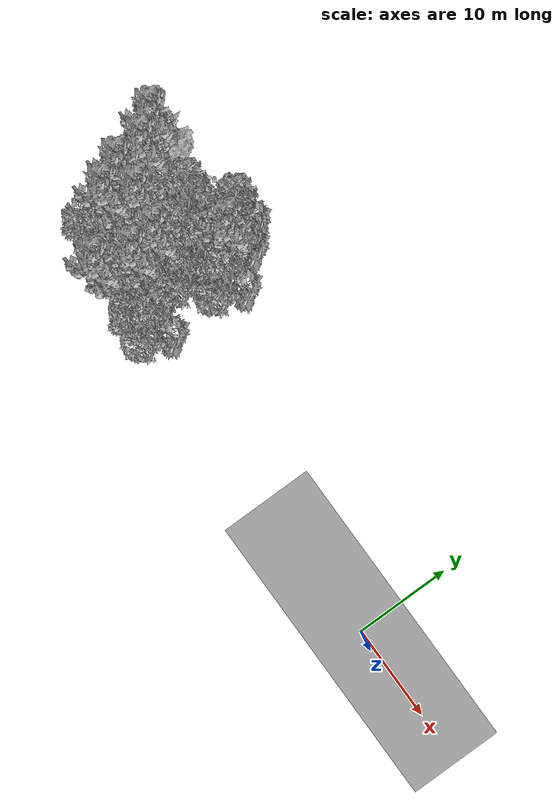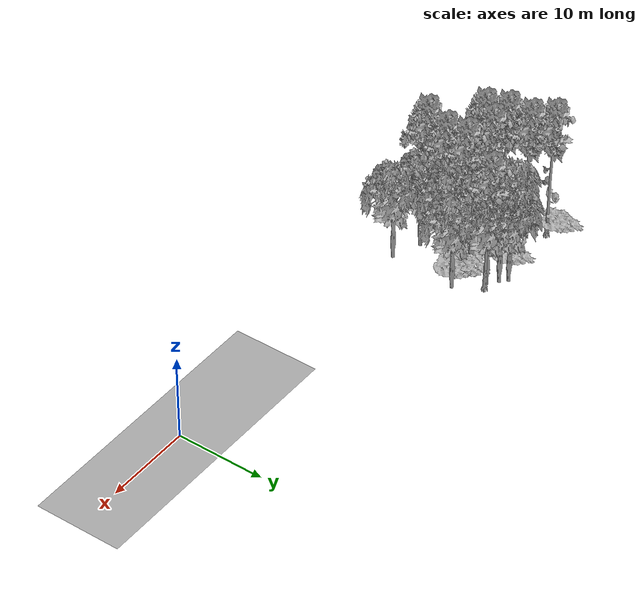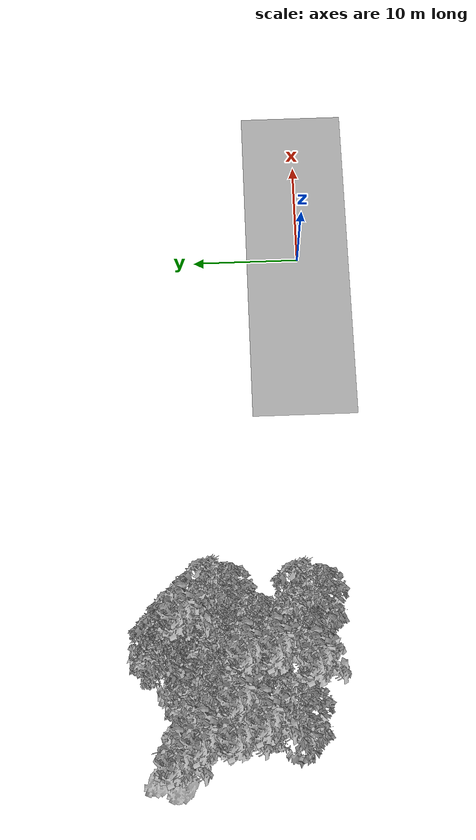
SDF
<sdf version="1.7">
 <world name="default">
  <model name="ground_plane">
   <static>1</static>
   <link name="link">
    <collision name="collision">
     <pose>-50 0 0 0 -0 0</pose>
     <geometry><plane><normal>0 0 1</normal><size>100 100</size></plane></geometry>
     <surface><contact><ode><min_depth>0.01</min_depth><max_vel>0</max_vel></ode></contact></surface>
    </collision>
    <visual name="grass">
     <cast_shadows>0</cast_shadows>
     <geometry>
      <mesh>
       <scale>0.5814285714285714 0.18142857142857144 0.1</scale>
       <uri>file://grass_plane/meshes/grass_plane.dae</uri>
      </mesh>
     </geometry>
    </visual>
   </link>
  </model>
  <model name="Tree 4">
   <static>1</static>
   <pose>-37.860258658787785 12.171442910924156 0 1.57079 -0 0</pose>
   <link name="link">
    <collision name="collision">
     <geometry><mesh><scale>3.5 5 3.5</scale><uri>model://tree_2/meshes/tree_2.obj</uri></mesh></geometry>
    </collision>
    <visual name="visual">
     <geometry><mesh><scale>3.5 5 3.5</scale><uri>model://tree_2/meshes/tree_2.obj</uri></mesh></geometry>
    </visual>
   </link>
  </model>
  <model name="Tree 14">
   <static>1</static>
   <pose>-44.75034069485515 4.949931277231471 0 1.57079 -0 0</pose>
   <link name="link">
    <collision name="collision">
     <geometry><mesh><scale>3.5 5 3.5</scale><uri>model://tree_9/meshes/tree_9.obj</uri></mesh></geometry>
    </collision>
    <visual name="visual">
     <geometry><mesh><scale>3.5 5 3.5</scale><uri>model://tree_9/meshes/tree_9.obj</uri></mesh></geometry>
    </visual>
   </link>
  </model>
  <model name="Tree 15">
   <static>1</static>
   <pose>-37.89983773162189 2.2039727767756325 0 1.57079 -0 0</pose>
   <link name="link">
    <collision name="collision">
     <geometry><mesh><scale>3.5 5 3.5</scale><uri>model://tree_2/meshes/tree_2.obj</uri></mesh></geometry>
    </collision>
    <visual name="visual">
     <geometry><mesh><scale>3.5 5 3.5</scale><uri>model://tree_2/meshes/tree_2.obj</uri></mesh></geometry>
    </visual>
   </link>
  </model>
  <model name="Tree 16">
   <static>1</static>
   <pose>-41.636838350007686 7.191071305497637 0 1.57079 -0 0</pose>
   <link name="link">
    <collision name="collision">
     <geometry><mesh><scale>4 2.5 4</scale><uri>model://tree_1/meshes/tree_1.obj</uri></mesh></geometry>
    </collision>
    <visual name="visual">
     <geometry><mesh><scale>4 2.5 4</scale><uri>model://tree_1/meshes/tree_1.obj</uri></mesh></geometry>
    </visual>
   </link>
  </model>
  <model name="Tree 45">
   <static>1</static>
   <pose>-45.793317973348465 7.11568474986823 0 1.57079 -0 0</pose>
   <link name="link">
    <collision name="collision">
     <geometry><mesh><scale>3.5 5 3.5</scale><uri>model://tree_9/meshes/tree_9.obj</uri></mesh></geometry>
    </collision>
    <visual name="visual">
     <geometry><mesh><scale>3.5 5 3.5</scale><uri>model://tree_9/meshes/tree_9.obj</uri></mesh></geometry>
    </visual>
   </link>
  </model>
  <model name="Tree 54">
   <static>1</static>
   <pose>-40.341334356723706 0.8218448333657946 0 1.57079 -0 0</pose>
   <link name="link">
    <collision name="collision">
     <geometry><mesh><scale>3.5 5 3.5</scale><uri>model://tree_9/meshes/tree_9.obj</uri></mesh></geometry>
    </collision>
    <visual name="visual">
     <geometry><mesh><scale>3.5 5 3.5</scale><uri>model://tree_9/meshes/tree_9.obj</uri></mesh></geometry>
    </visual>
   </link>
  </model>
  <model name="Tree 60">
   <static>1</static>
   <pose>-40.44781382082306 7.845623440817647 0 1.57079 -0 0</pose>
   <link name="link">
    <collision name="collision">
     <geometry><mesh><scale>3 2 3</scale><uri>model://tree_3/meshes/tree_3.obj</uri></mesh></geometry>
    </collision>
    <visual name="visual">
     <geometry><mesh><scale>3 2 3</scale><uri>model://tree_3/meshes/tree_3.obj</uri></mesh></geometry>
    </visual>
   </link>
  </model>
  <model name="Tree 80">
   <static>1</static>
   <pose>-41.1367477736361 11.532578595082306 0 1.57079 -0 0</pose>
   <link name="link">
    <collision name="collision">
     <geometry><mesh><scale>4 2.5 4</scale><uri>model://tree_1/meshes/tree_1.obj</uri></mesh></geometry>
    </collision>
    <visual name="visual">
     <geometry><mesh><scale>4 2.5 4</scale><uri>model://tree_1/meshes/tree_1.obj</uri></mesh></geometry>
    </visual>
   </link>
  </model>
  <model name="Tree 98">
   <static>1</static>
   <pose>-47.51415072182769 11.718019205872942 0 1.57079 -0 0</pose>
   <link name="link">
    <collision name="collision">
     <geometry><mesh><scale>3.5 5 3.5</scale><uri>model://tree_9/meshes/tree_9.obj</uri></mesh></geometry>
    </collision>
    <visual name="visual">
     <geometry><mesh><scale>3.5 5 3.5</scale><uri>model://tree_9/meshes/tree_9.obj</uri></mesh></geometry>
    </visual>
   </link>
  </model>
  <model name="Tree 107">
   <static>1</static>
   <pose>-34.65278559874103 1.0095065330319137 0 1.57079 -0 0</pose>
   <link name="link">
    <collision name="collision">
     <geometry><mesh><scale>3.5 5 3.5</scale><uri>model://tree_2/meshes/tree_2.obj</uri></mesh></geometry>
    </collision>
    <visual name="visual">
     <geometry><mesh><scale>3.5 5 3.5</scale><uri>model://tree_2/meshes/tree_2.obj</uri></mesh></geometry>
    </visual>
   </link>
  </model>
  <model name="Tree 125">
   <static>1</static>
   <pose>-39.55416533805814 6.17032811723622 0 1.57079 -0 0</pose>
   <link name="link">
    <collision name="collision">
     <geometry><mesh><scale>3.5 5 3.5</scale><uri>model://tree_9/meshes/tree_9.obj</uri></mesh></geometry>
    </collision>
    <visual name="visual">
     <geometry><mesh><scale>3.5 5 3.5</scale><uri>model://tree_9/meshes/tree_9.obj</uri></mesh></geometry>
    </visual>
   </link>
  </model>
  <model name="Tree 138">
   <static>1</static>
   <pose>-36.85792273941813 6.355683295993096 0 1.57079 -0 0</pose>
   <link name="link">
    <collision name="collision">
     <geometry><mesh><scale>3.5 5 3.5</scale><uri>model://tree_2/meshes/tree_2.obj</uri></mesh></geometry>
    </collision>
    <visual name="visual">
     <geometry><mesh><scale>3.5 5 3.5</scale><uri>model://tree_2/meshes/tree_2.obj</uri></mesh></geometry>
    </visual>
   </link>
  </model>
  <model name="Tree 166">
   <static>1</static>
   <pose>-42.2509929964215 10.118006093158058 0 1.57079 -0 0</pose>
   <link name="link">
    <collision name="collision">
     <geometry><mesh><scale>3.5 5 3.5</scale><uri>model://tree_2/meshes/tree_2.obj</uri></mesh></geometry>
    </collision>
    <visual name="visual">
     <geometry><mesh><scale>3.5 5 3.5</scale><uri>model://tree_2/meshes/tree_2.obj</uri></mesh></geometry>
    </visual>
   </link>
  </model>
  <model name="Tree 167">
   <static>1</static>
   <pose>-36.93524289442046 8.85020052528959 0 1.57079 -0 0</pose>
   <link name="link">
    <collision name="collision">
     <geometry><mesh><scale>4 2.5 4</scale><uri>model://tree_1/meshes/tree_1.obj</uri></mesh></geometry>
    </collision>
    <visual name="visual">
     <geometry><mesh><scale>4 2.5 4</scale><uri>model://tree_1/meshes/tree_1.obj</uri></mesh></geometry>
    </visual>
   </link>
  </model>
  <model name="Tree 169">
   <static>1</static>
   <pose>-43.9809800008766 2.669078225928647 0 1.57079 -0 0</pose>
   <link name="link">
    <collision name="collision">
     <geometry><mesh><scale>3.5 5 3.5</scale><uri>model://tree_2/meshes/tree_2.obj</uri></mesh></geometry>
    </collision>
    <visual name="visual">
     <geometry><mesh><scale>3.5 5 3.5</scale><uri>model://tree_2/meshes/tree_2.obj</uri></mesh></geometry>
    </visual>
   </link>
  </model>
  <model name="Tree 190">
   <static>1</static>
   <pose>-36.7042951765539 11.363687608277896 0 1.57079 -0 0</pose>
   <link name="link">
    <collision name="collision">
     <geometry><mesh><scale>3.5 5 3.5</scale><uri>model://tree_2/meshes/tree_2.obj</uri></mesh></geometry>
    </collision>
    <visual name="visual">
     <geometry><mesh><scale>3.5 5 3.5</scale><uri>model://tree_2/meshes/tree_2.obj</uri></mesh></geometry>
    </visual>
   </link>
  </model>
  <model name="Tree 227">
   <static>1</static>
   <pose>-38.38337782689125 5.695789502562771 0 1.57079 -0 0</pose>
   <link name="link">
    <collision name="collision">
     <geometry><mesh><scale>3.5 5 3.5</scale><uri>model://tree_2/meshes/tree_2.obj</uri></mesh></geometry>
    </collision>
    <visual name="visual">
     <geometry><mesh><scale>3.5 5 3.5</scale><uri>model://tree_2/meshes/tree_2.obj</uri></mesh></geometry>
    </visual>
   </link>
  </model>
  <model name="Tree 229">
   <static>1</static>
   <pose>-39.2517511687585 3.862285721301916 0 1.57079 -0 0</pose>
   <link name="link">
    <collision name="collision">
     <geometry><mesh><scale>3.5 5 3.5</scale><uri>model://tree_9/meshes/tree_9.obj</uri></mesh></geometry>
    </collision>
    <visual name="visual">
     <geometry><mesh><scale>3.5 5 3.5</scale><uri>model://tree_9/meshes/tree_9.obj</uri></mesh></geometry>
    </visual>
   </link>
  </model>
  <model name="Tree 231">
   <static>1</static>
   <pose>-43.05425089377534 6.97390566915961 0 1.57079 -0 0</pose>
   <link name="link">
    <collision name="collision">
     <geometry><mesh><scale>3.5 5 3.5</scale><uri>model://tree_9/meshes/tree_9.obj</uri></mesh></geometry>
    </collision>
    <visual name="visual">
     <geometry><mesh><scale>3.5 5 3.5</scale><uri>model://tree_9/meshes/tree_9.obj</uri></mesh></geometry>
    </visual>
   </link>
  </model>
  <model name="Tree 233">
   <static>1</static>
   <pose>-35.838930981613125 7.957839869333689 0 1.57079 -0 0</pose>
   <link name="link">
    <collision name="collision">
     <geometry><mesh><scale>4 2.5 4</scale><uri>model://tree_1/meshes/tree_1.obj</uri></mesh></geometry>
    </collision>
    <visual name="visual">
     <geometry><mesh><scale>4 2.5 4</scale><uri>model://tree_1/meshes/tree_1.obj</uri></mesh></geometry>
    </visual>
   </link>
  </model>
  <model name="Tree 242">
   <static>1</static>
   <pose>-34.21616725023119 8.73267068570576 0 1.57079 -0 0</pose>
   <link name="link">
    <collision name="collision">
     <geometry><mesh><scale>3.5 5 3.5</scale><uri>model://tree_2/meshes/tree_2.obj</uri></mesh></geometry>
    </collision>
    <visual name="visual">
     <geometry><mesh><scale>3.5 5 3.5</scale><uri>model://tree_2/meshes/tree_2.obj</uri></mesh></geometry>
    </visual>
   </link>
  </model>
  <model name="Tree 246">
   <static>1</static>
   <pose>-37.82587838969256 8.64210754967748 0 1.57079 -0 0</pose>
   <link name="link">
    <collision name="collision">
     <geometry><mesh><scale>3.5 5 3.5</scale><uri>model://tree_2/meshes/tree_2.obj</uri></mesh></geometry>
    </collision>
    <visual name="visual">
     <geometry><mesh><scale>3.5 5 3.5</scale><uri>model://tree_2/meshes/tree_2.obj</uri></mesh></geometry>
    </visual>
   </link>
  </model>
  <model name="Tree 270">
   <static>1</static>
   <pose>-36.41639005397395 11.339259713437553 0 1.57079 -0 0</pose>
   <link name="link">
    <collision name="collision">
     <geometry><mesh><scale>3.5 5 3.5</scale><uri>model://tree_9/meshes/tree_9.obj</uri></mesh></geometry>
    </collision>
    <visual name="visual">
     <geometry><mesh><scale>3.5 5 3.5</scale><uri>model://tree_9/meshes/tree_9.obj</uri></mesh></geometry>
    </visual>
   </link>
  </model>
  <model name="Tree 289">
   <static>1</static>
   <pose>-48.546774038826825 12.75718429081407 0 1.57079 -0 0</pose>
   <link name="link">
    <collision name="collision">
     <geometry><mesh><scale>4 2.5 4</scale><uri>model://tree_1/meshes/tree_1.obj</uri></mesh></geometry>
    </collision>
    <visual name="visual">
     <geometry><mesh><scale>4 2.5 4</scale><uri>model://tree_1/meshes/tree_1.obj</uri></mesh></geometry>
    </visual>
   </link>
  </model>
  <model name="Tree 295">
   <static>1</static>
   <pose>-46.06330003154309 9.765439470955279 0 1.57079 -0 0</pose>
   <link name="link">
    <collision name="collision">
     <geometry><mesh><scale>3.5 5 3.5</scale><uri>model://tree_9/meshes/tree_9.obj</uri></mesh></geometry>
    </collision>
    <visual name="visual">
     <geometry><mesh><scale>3.5 5 3.5</scale><uri>model://tree_9/meshes/tree_9.obj</uri></mesh></geometry>
    </visual>
   </link>
  </model>
  <model name="Tree 299">
   <static>1</static>
   <pose>-38.571834476493564 12.874438076511552 0 1.57079 -0 0</pose>
   <link name="link">
    <collision name="collision">
     <geometry><mesh><scale>3.5 5 3.5</scale><uri>model://tree_2/meshes/tree_2.obj</uri></mesh></geometry>
    </collision>
    <visual name="visual">
     <geometry><mesh><scale>3.5 5 3.5</scale><uri>model://tree_2/meshes/tree_2.obj</uri></mesh></geometry>
    </visual>
   </link>
  </model>
 </world>
</sdf>
